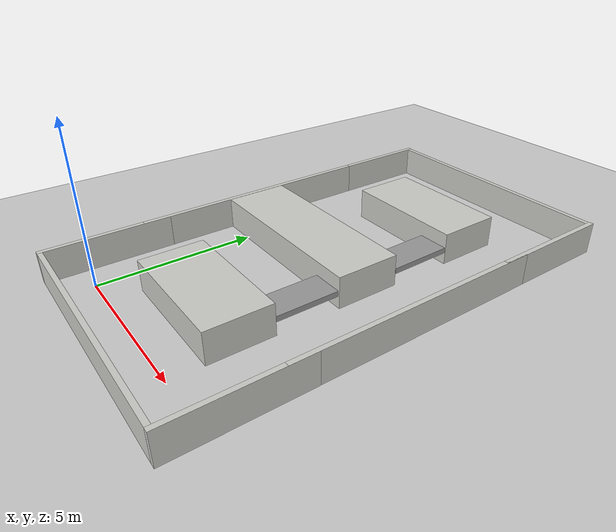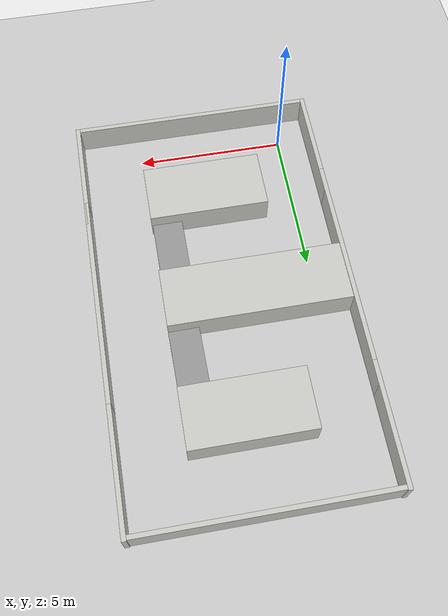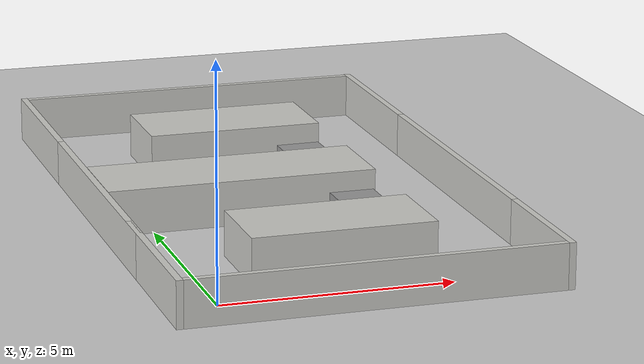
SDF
<sdf version="1.6">
 <world name="default">
  <light name="sun" type="directional">
   <pose>0 0 10 0 -0 0</pose>
   <diffuse>0.8 0.8 0.8 1</diffuse>
   <specular>0.1 0.1 0.1 1</specular>
   <attenuation>
    <range>1000</range>
    <constant>0.9</constant>
    <linear>0.01</linear>
    <quadratic>0.001</quadratic>
   </attenuation>
   <direction>-0.5 0.5 -1</direction>
  </light>
  <model name="ground_plane">
   <static>1</static>
   <link name="link">
    <collision name="collision">
     <geometry><plane><normal>0 0 1</normal><size>100 100</size></plane></geometry>
     <surface><friction><ode><mu>100</mu><mu2>50</mu2></ode></friction></surface>
    </collision>
    <visual name="visual">
     <cast_shadows>0</cast_shadows>
     <geometry><plane><normal>0 0 1</normal><size>100 100</size></plane></geometry>
     <material>
      <script><uri>file://media/materials/scripts/concrete.material</uri><name>Concrete/1</name></script>
     </material>
    </visual>
   </link>
  </model>
  <gravity>0 0 -9.8</gravity>
  <magnetic_field>6e-06 2.3e-05 -4.2e-05</magnetic_field>
  <atmosphere type="adiabatic"/>
  <physics name="default_physics" default="0" type="ode">
   <max_step_size>0.001</max_step_size>
   <real_time_factor>1.5</real_time_factor>
   <real_time_update_rate>1500</real_time_update_rate>
  </physics>
  <scene><ambient>0.4 0.4 0.4 1</ambient><background>0.7 0.7 0.7 1</background><shadows>1</shadows></scene>
  <spherical_coordinates>
   <surface_model>EARTH_WGS84</surface_model>
   <latitude_deg>0</latitude_deg>
   <longitude_deg>0</longitude_deg>
   <elevation>0</elevation>
   <heading_deg>0</heading_deg>
  </spherical_coordinates>
  <model name="wall_8meter">
   <static>1</static>
   <pose>3 -1.075 0 0 -0 0</pose>
   <link name="Wall">
    <collision name="Wall_Collision">
     <geometry><box><size>8 0.15 1</size></box></geometry>
     <pose>0 0 0.5 0 -0 0</pose>
    </collision>
    <visual name="Wall_Visual">
     <pose>0 0 0.5 0 -0 0</pose>
     <geometry><box><size>8 0.15 1</size></box></geometry>
     <material>
      <script><uri>file://media/materials/scripts/gazebo.material</uri><name>Gazebo/CeilingTiled</name></script>
      <ambient>1 0.764706 0.305882 1</ambient>
     </material>
    </visual>
   </link>
  </model>
  <model name="block_2x4m">
   <pose>3 2 0 0 0 -1.5708</pose>
   <link name="Block">
    <collision name="Block_Collision">
     <geometry><box><size>2 4 1</size></box></geometry>
     <pose>0 0 0.5 0 -0 0</pose>
    </collision>
    <visual name="Block_Visual">
     <pose>0 0 0.5 0 -0 0</pose>
     <geometry><box><size>2 4 1</size></box></geometry>
     <material>
      <script><uri>file://media/materials/scripts/gazebo.material</uri><name>Gazebo/CeilingTiled</name></script>
      <ambient>1 0.764706 0.305882 1</ambient>
     </material>
    </visual>
   </link>
   <static>1</static>
  </model>
  <model name="block_2x6m_0">
   <pose>2.00549 5.98504 0 0 0 -1.5708</pose>
   <link name="Block">
    <collision name="Block_Collision">
     <geometry><box><size>2 6 1</size></box></geometry>
     <pose>0 0 0.5 0 -0 0</pose>
    </collision>
    <visual name="Block_Visual">
     <pose>0 0 0.5 0 -0 0</pose>
     <geometry><box><size>2 6 1</size></box></geometry>
     <material>
      <script><uri>file://media/materials/scripts/gazebo.material</uri><name>Gazebo/CeilingTiled</name></script>
      <ambient>1 0.764706 0.305882 1</ambient>
     </material>
    </visual>
   </link>
   <static>1</static>
  </model>
  <model name="block_2x4m_clone_clone_0">
   <pose>3 10 0 0 0 -1.5708</pose>
   <link name="Block">
    <collision name="Block_Collision">
     <geometry><box><size>2 4 1</size></box></geometry>
     <pose>0 0 0.5 0 -0 0</pose>
    </collision>
    <visual name="Block_Visual">
     <pose>0 0 0.5 0 -0 0</pose>
     <geometry><box><size>2 4 1</size></box></geometry>
     <material>
      <script><uri>file://media/materials/scripts/gazebo.material</uri><name>Gazebo/CeilingTiled</name></script>
      <ambient>1 0.764706 0.305882 1</ambient>
     </material>
    </visual>
   </link>
   <static>1</static>
  </model>
  <model name="wall_8meter_clone">
   <static>1</static>
   <pose>3 13.075 0 0 -0 0</pose>
   <link name="Wall">
    <collision name="Wall_Collision">
     <geometry><box><size>8 0.15 1</size></box></geometry>
     <pose>0 0 0.5 0 -0 0</pose>
    </collision>
    <visual name="Wall_Visual">
     <pose>0 0 0.5 0 -0 0</pose>
     <geometry><box><size>8 0.15 1</size></box></geometry>
     <material>
      <script><uri>file://media/materials/scripts/gazebo.material</uri><name>Gazebo/CeilingTiled</name></script>
      <ambient>1 0.764706 0.305882 1</ambient>
     </material>
    </visual>
   </link>
  </model>
  <model name="wall_4meter">
   <static>1</static>
   <pose>7.075 0.850301 0 0 0 -1.5708</pose>
   <link name="Wall">
    <collision name="Wall_Collision">
     <geometry><box><size>4 0.15 1</size></box></geometry>
     <pose>0 0 0.5 0 -0 0</pose>
    </collision>
    <visual name="Wall_Visual">
     <pose>0 0 0.5 0 -0 0</pose>
     <geometry><box><size>4 0.15 1</size></box></geometry>
     <material>
      <script><uri>file://media/materials/scripts/gazebo.material</uri><name>Gazebo/CeilingTiled</name></script>
      <ambient>1 0.764706 0.305882 1</ambient>
     </material>
    </visual>
   </link>
  </model>
  <model name="wall_4meter_clone_clone_1">
   <static>1</static>
   <pose>7.07498 11.1782 0 0 0 -1.5708</pose>
   <link name="Wall">
    <collision name="Wall_Collision">
     <geometry><box><size>4 0.15 1</size></box></geometry>
     <pose>0 0 0.5 0 -0 0</pose>
    </collision>
    <visual name="Wall_Visual">
     <pose>0 0 0.5 0 -0 0</pose>
     <geometry><box><size>4 0.15 1</size></box></geometry>
     <material>
      <script><uri>file://media/materials/scripts/gazebo.material</uri><name>Gazebo/CeilingTiled</name></script>
      <ambient>1 0.764706 0.305882 1</ambient>
     </material>
    </visual>
   </link>
  </model>
  <model name="wall_4meter_clone_0">
   <static>1</static>
   <pose>-1.075 0.850891 0 0 0 -1.5708</pose>
   <link name="Wall">
    <collision name="Wall_Collision">
     <geometry><box><size>4 0.15 1</size></box></geometry>
     <pose>0 0 0.5 0 -0 0</pose>
    </collision>
    <visual name="Wall_Visual">
     <pose>0 0 0.5 0 -0 0</pose>
     <geometry><box><size>4 0.15 1</size></box></geometry>
     <material>
      <script><uri>file://media/materials/scripts/gazebo.material</uri><name>Gazebo/CeilingTiled</name></script>
      <ambient>1 0.764706 0.305882 1</ambient>
     </material>
    </visual>
   </link>
  </model>
  <model name="wall_4meter_clone_0_clone_0">
   <static>1</static>
   <pose>-1.07503 11.1778 0 0 0 -1.5708</pose>
   <link name="Wall">
    <collision name="Wall_Collision">
     <geometry><box><size>4 0.15 1</size></box></geometry>
     <pose>0 0 0.5 0 -0 0</pose>
    </collision>
    <visual name="Wall_Visual">
     <pose>0 0 0.5 0 -0 0</pose>
     <geometry><box><size>4 0.15 1</size></box></geometry>
     <material>
      <script><uri>file://media/materials/scripts/gazebo.material</uri><name>Gazebo/CeilingTiled</name></script>
      <ambient>1 0.764706 0.305882 1</ambient>
     </material>
    </visual>
   </link>
  </model>
  <model name="wall_8meter_0">
   <static>1</static>
   <pose>-1.075 6 0 0 0 -1.5708</pose>
   <link name="Wall">
    <collision name="Wall_Collision">
     <geometry><box><size>8 0.15 1</size></box></geometry>
     <pose>0 0 0.5 0 -0 0</pose>
    </collision>
    <visual name="Wall_Visual">
     <pose>0 0 0.5 0 -0 0</pose>
     <geometry><box><size>8 0.15 1</size></box></geometry>
     <material>
      <script><uri>file://media/materials/scripts/gazebo.material</uri><name>Gazebo/CeilingTiled</name></script>
      <ambient>1 0.764706 0.305882 1</ambient>
     </material>
    </visual>
   </link>
  </model>
  <model name="wall_8meter_0_clone">
   <static>1</static>
   <pose>7.075 6 0 0 0 -1.5708</pose>
   <link name="Wall">
    <collision name="Wall_Collision">
     <geometry><box><size>8 0.15 1</size></box></geometry>
     <pose>0 0 0.5 0 -0 0</pose>
    </collision>
    <visual name="Wall_Visual">
     <pose>0 0 0.5 0 -0 0</pose>
     <geometry><box><size>8 0.15 1</size></box></geometry>
     <material>
      <script><uri>file://media/materials/scripts/gazebo.material</uri><name>Gazebo/CeilingTiled</name></script>
      <ambient>1 0.764706 0.305882 1</ambient>
     </material>
    </visual>
   </link>
  </model>
  <model name="unit_box_0_0">
   <pose>4.46097 4.00354 0.467955 -4.5e-05 -0.000421 1e-05</pose>
   <link name="unit_box_0_0::link">
    <inertial>
     <mass>1</mass>
     <inertia>
      <ixx>0.166667</ixx>
      <ixy>0</ixy>
      <ixz>0</ixz>
      <iyy>0.166667</iyy>
      <iyz>0</iyz>
      <izz>0.166667</izz>
     </inertia>
    </inertial>
    <collision name="collision"><geometry><box><size>1 1.99693 0.173992</size></box></geometry></collision>
    <visual name="visual">
     <geometry><box><size>1 1.99693 0.173992</size></box></geometry>
     <material>
      <script><name>Gazebo/Grey</name><uri>file://media/materials/scripts/gazebo.material</uri></script>
     </material>
    </visual>
    <gravity>0</gravity>
   </link>
  </model>
  <model name="unit_box_0_0_clone">
   <pose>4.49353 7.9932 0.461127 0 -0 0.012473</pose>
   <link name="unit_box_0_0_clone::unit_box_0_0_clone::unit_box_0_0::link">
    <inertial>
     <mass>1</mass>
     <inertia>
      <ixx>0.166667</ixx>
      <ixy>0</ixy>
      <ixz>0</ixz>
      <iyy>0.166667</iyy>
      <iyz>0</iyz>
      <izz>0.166667</izz>
     </inertia>
    </inertial>
    <collision name="collision"><geometry><box><size>1 1.99693 0.173992</size></box></geometry></collision>
    <visual name="visual">
     <geometry><box><size>1 1.99693 0.173992</size></box></geometry>
     <material>
      <script><name>Gazebo/Grey</name><uri>file://media/materials/scripts/gazebo.material</uri></script>
     </material>
    </visual>
    <gravity>0</gravity>
   </link>
  </model>
 </world>
</sdf>
